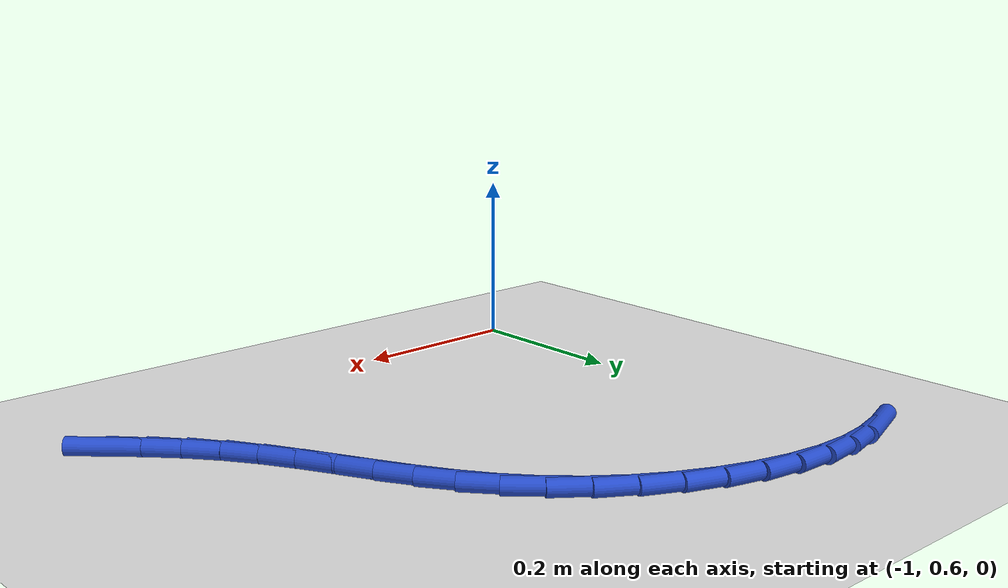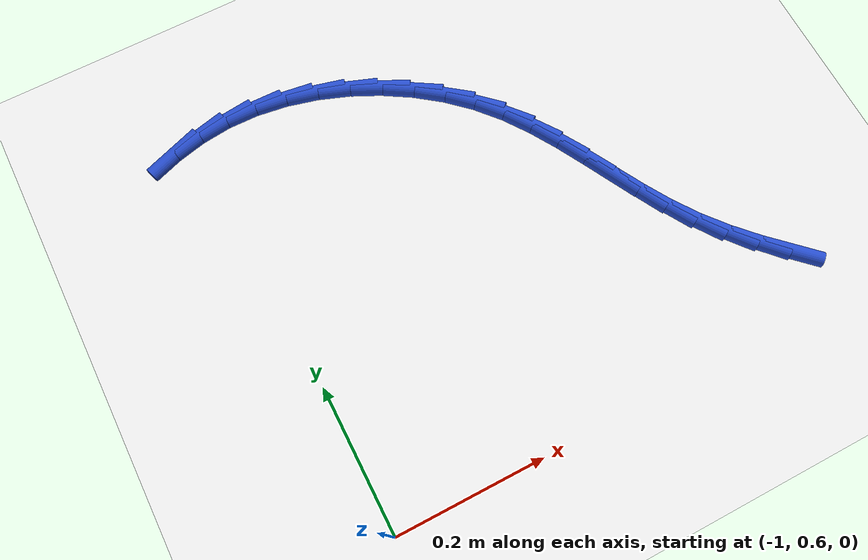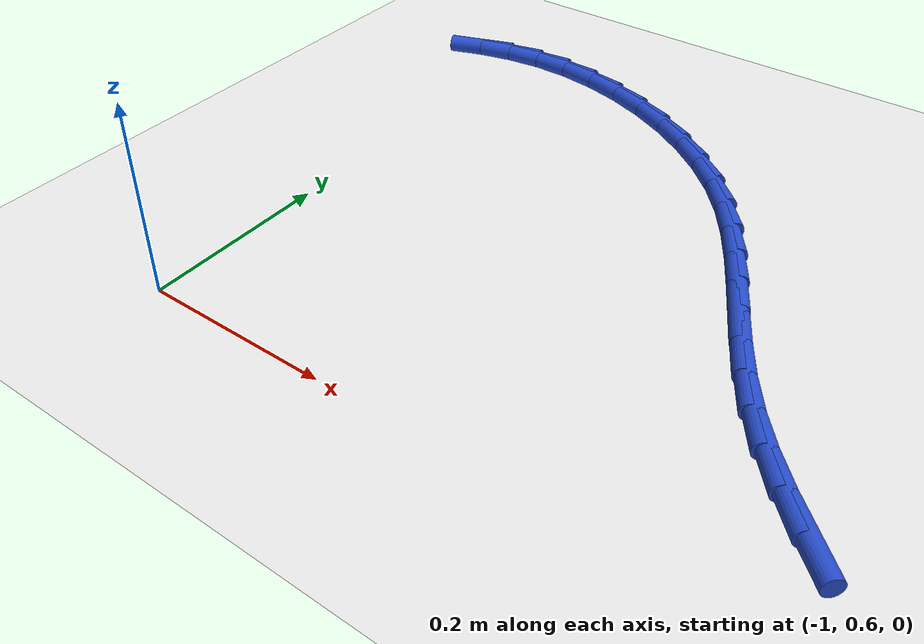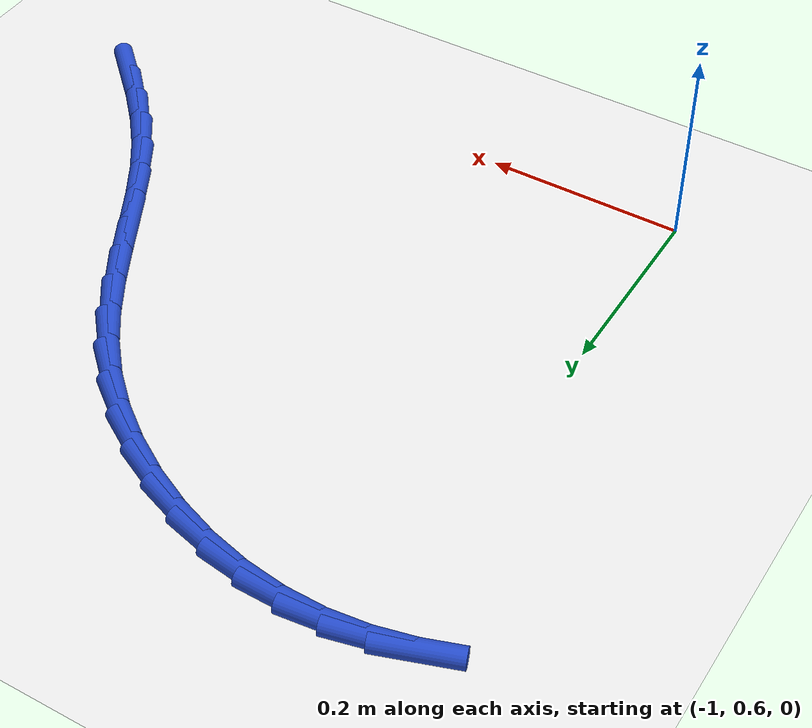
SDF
<sdf version="1.6">
 <world name="default">
  <model name="ground_plane">
   <static>1</static>
   <link name="link">
    <collision name="collision">
     <geometry><plane><normal>0 0 1</normal><size>100 100</size></plane></geometry>
     <surface><friction><ode><mu>100</mu><mu2>50</mu2></ode></friction></surface>
    </collision>
    <visual name="visual">
     <cast_shadows>0</cast_shadows>
     <geometry><plane><normal>0 0 1</normal><size>100 100</size></plane></geometry>
     <material>
      <script><uri>file://media/materials/scripts/gazebo.material</uri><name>Gazebo/WhiteGlow</name></script>
     </material>
    </visual>
   </link>
  </model>
  <model name="line">
   <link name="link_20">
    <pose>-0.3984186187653921 0.6799824502291371 0.01 0 1.57 -0.769511523250999</pose>
    <collision name="collision">
     <geometry><cylinder><radius>0.01</radius><length>0.08</length></cylinder></geometry>
    </collision>
    <visual name="visual">
     <material>
      <script><name>Gazebo/Blue</name><uri>file://media/materials/scripts/gazebo.material</uri></script>
     </material>
     <geometry><cylinder><radius>0.01</radius><length>0.08</length></cylinder></geometry>
    </visual>
   </link>
   <link name="link_21">
    <pose>-0.4284886812861927 0.7091119514545836 0.01 0 1.57 -0.8238747855138431</pose>
    <collision name="collision">
     <geometry><cylinder><radius>0.01</radius><length>0.08</length></cylinder></geometry>
    </collision>
    <visual name="visual">
     <material>
      <script><name>Gazebo/Blue</name><uri>file://media/materials/scripts/gazebo.material</uri></script>
     </material>
     <geometry><cylinder><radius>0.01</radius><length>0.08</length></cylinder></geometry>
    </visual>
   </link>
   <link name="link_22">
    <pose>-0.4566797437201335 0.7395603774057905 0.01 0 1.57 -0.8917098272765633</pose>
    <collision name="collision">
     <geometry><cylinder><radius>0.01</radius><length>0.08</length></cylinder></geometry>
    </collision>
    <visual name="visual">
     <material>
      <script><name>Gazebo/Blue</name><uri>file://media/materials/scripts/gazebo.material</uri></script>
     </material>
     <geometry><cylinder><radius>0.01</radius><length>0.08</length></cylinder></geometry>
    </visual>
   </link>
   <link name="link_23">
    <pose>-0.4825509511031091 0.7716128526822251 0.01 0 1.57 -0.9713835721225375</pose>
    <collision name="collision">
     <geometry><cylinder><radius>0.01</radius><length>0.08</length></cylinder></geometry>
    </collision>
    <visual name="visual">
     <material>
      <script><name>Gazebo/Blue</name><uri>file://media/materials/scripts/gazebo.material</uri></script>
     </material>
     <geometry><cylinder><radius>0.01</radius><length>0.08</length></cylinder></geometry>
    </visual>
   </link>
   <link name="link_24">
    <pose>-0.5057175224394685 0.8055180439164932 0.01 0 1.57 -1.0397373057597057</pose>
    <collision name="collision">
     <geometry><cylinder><radius>0.01</radius><length>0.08</length></cylinder></geometry>
    </collision>
    <visual name="visual">
     <material>
      <script><name>Gazebo/Blue</name><uri>file://media/materials/scripts/gazebo.material</uri></script>
     </material>
     <geometry><cylinder><radius>0.01</radius><length>0.08</length></cylinder></geometry>
    </visual>
   </link>
   <link name="link_25">
    <pose>-0.5265696846647365 0.8410207259309762 0.01 0 1.57 -1.0800094032478889</pose>
    <collision name="collision">
     <geometry><cylinder><radius>0.01</radius><length>0.08</length></cylinder></geometry>
    </collision>
    <visual name="visual">
     <material>
      <script><name>Gazebo/Blue</name><uri>file://media/materials/scripts/gazebo.material</uri></script>
     </material>
     <geometry><cylinder><radius>0.01</radius><length>0.08</length></cylinder></geometry>
    </visual>
   </link>
   <link name="link_26">
    <pose>-0.5460631289883203 0.8774980220633136 0.01 0 1.57 -1.0922069597904753</pose>
    <collision name="collision">
     <geometry><cylinder><radius>0.01</radius><length>0.08</length></cylinder></geometry>
    </collision>
    <visual name="visual">
     <material>
      <script><name>Gazebo/Blue</name><uri>file://media/materials/scripts/gazebo.material</uri></script>
     </material>
     <geometry><cylinder><radius>0.01</radius><length>0.08</length></cylinder></geometry>
    </visual>
   </link>
   <link name="link_27">
    <pose>-0.565166402060116 0.9143186973480628 0.01 0 1.57 -1.0766400171323605</pose>
    <collision name="collision">
     <geometry><cylinder><radius>0.01</radius><length>0.08</length></cylinder></geometry>
    </collision>
    <visual name="visual">
     <material>
      <script><name>Gazebo/Blue</name><uri>file://media/materials/scripts/gazebo.material</uri></script>
     </material>
     <geometry><cylinder><radius>0.01</radius><length>0.08</length></cylinder></geometry>
    </visual>
   </link>
   <link name="link_28">
    <pose>-0.5848480505300198 0.950851516819782 0.01 0 1.57 -1.0332654261850762</pose>
    <collision name="collision">
     <geometry><cylinder><radius>0.01</radius><length>0.08</length></cylinder></geometry>
    </collision>
    <visual name="visual">
     <material>
      <script><name>Gazebo/Blue</name><uri>file://media/materials/scripts/gazebo.material</uri></script>
     </material>
     <geometry><cylinder><radius>0.01</radius><length>0.08</length></cylinder></geometry>
    </visual>
   </link>
   <link name="link_29">
    <pose>-0.6060766210479278 0.9864652455130287 0.01 0 1.57 -0.9620501244901579</pose>
    <collision name="collision">
     <geometry><cylinder><radius>0.01</radius><length>0.08</length></cylinder></geometry>
    </collision>
    <visual name="visual">
     <material>
      <script><name>Gazebo/Blue</name><uri>file://media/materials/scripts/gazebo.material</uri></script>
     </material>
     <geometry><cylinder><radius>0.01</radius><length>0.08</length></cylinder></geometry>
    </visual>
   </link>
   <link name="link_30">
    <pose>-0.6298206602637358 1.02052864846236 0.01 0 1.57 -0.8641561636152018</pose>
    <collision name="collision">
     <geometry><cylinder><radius>0.01</radius><length>0.08</length></cylinder></geometry>
    </collision>
    <visual name="visual">
     <material>
      <script><name>Gazebo/Blue</name><uri>file://media/materials/scripts/gazebo.material</uri></script>
     </material>
     <geometry><cylinder><radius>0.01</radius><length>0.08</length></cylinder></geometry>
    </visual>
   </link>
   <link name="link_31">
    <pose>-0.6570397124970522 1.0524121476929484 0.01 0 1.57 -0.7540346225117152</pose>
    <collision name="collision">
     <geometry><cylinder><radius>0.01</radius><length>0.08</length></cylinder></geometry>
    </collision>
    <visual name="visual">
     <material>
      <script><name>Gazebo/Blue</name><uri>file://media/materials/scripts/gazebo.material</uri></script>
     </material>
     <geometry><cylinder><radius>0.01</radius><length>0.08</length></cylinder></geometry>
    </visual>
   </link>
   <link name="link_32">
    <pose>-0.6881112286628995 1.0815933067452037 0.01 0 1.57 -0.6499195010057198</pose>
    <collision name="collision">
     <geometry><cylinder><radius>0.01</radius><length>0.08</length></cylinder></geometry>
    </collision>
    <visual name="visual">
     <material>
      <script><name>Gazebo/Blue</name><uri>file://media/materials/scripts/gazebo.material</uri></script>
     </material>
     <geometry><cylinder><radius>0.01</radius><length>0.08</length></cylinder></geometry>
    </visual>
   </link>
   <link name="link_33">
    <pose>-0.7224854272697202 1.1077203577914716 0.01 0 1.57 -0.5504771488180071</pose>
    <collision name="collision">
     <geometry><cylinder><radius>0.01</radius><length>0.08</length></cylinder></geometry>
    </collision>
    <visual name="visual">
     <material>
      <script><name>Gazebo/Blue</name><uri>file://media/materials/scripts/gazebo.material</uri></script>
     </material>
     <geometry><cylinder><radius>0.01</radius><length>0.08</length></cylinder></geometry>
    </visual>
   </link>
   <link name="link_34">
    <pose>-0.759529771194415 1.1304567652051294 0.01 0 1.57 -0.4527037058236821</pose>
    <collision name="collision">
     <geometry><cylinder><radius>0.01</radius><length>0.08</length></cylinder></geometry>
    </collision>
    <visual name="visual">
     <material>
      <script><name>Gazebo/Blue</name><uri>file://media/materials/scripts/gazebo.material</uri></script>
     </material>
     <geometry><cylinder><radius>0.01</radius><length>0.08</length></cylinder></geometry>
    </visual>
   </link>
   <link name="link_35">
    <pose>-0.7986117233138849 1.1494659933595548 0.01 0 1.57 -0.3536261670584787</pose>
    <collision name="collision">
     <geometry><cylinder><radius>0.01</radius><length>0.08</length></cylinder></geometry>
    </collision>
    <visual name="visual">
     <material>
      <script><name>Gazebo/Blue</name><uri>file://media/materials/scripts/gazebo.material</uri></script>
     </material>
     <geometry><cylinder><radius>0.01</radius><length>0.08</length></cylinder></geometry>
    </visual>
   </link>
   <link name="link_36">
    <pose>-0.8390987465050314 1.1644115066281253 0.01 0 1.57 -0.25022679561089617</pose>
    <collision name="collision">
     <geometry><cylinder><radius>0.01</radius><length>0.08</length></cylinder></geometry>
    </collision>
    <visual name="visual">
     <material>
      <script><name>Gazebo/Blue</name><uri>file://media/materials/scripts/gazebo.material</uri></script>
     </material>
     <geometry><cylinder><radius>0.01</radius><length>0.08</length></cylinder></geometry>
    </visual>
   </link>
   <link name="link_37">
    <pose>-0.8803583036447554 1.1749567693842184 0.01 0 1.57 -0.1393929859594131</pose>
    <collision name="collision">
     <geometry><cylinder><radius>0.01</radius><length>0.08</length></cylinder></geometry>
    </collision>
    <visual name="visual">
     <material>
      <script><name>Gazebo/Blue</name><uri>file://media/materials/scripts/gazebo.material</uri></script>
     </material>
     <geometry><cylinder><radius>0.01</radius><length>0.08</length></cylinder></geometry>
    </visual>
   </link>
   <link name="link_38">
    <pose>-0.9217578576099578 1.1807652460012115 0.01 0 1.57 -0.017969430090186148</pose>
    <collision name="collision">
     <geometry><cylinder><radius>0.01</radius><length>0.08</length></cylinder></geometry>
    </collision>
    <visual name="visual">
     <material>
      <script><name>Gazebo/Blue</name><uri>file://media/materials/scripts/gazebo.material</uri></script>
     </material>
     <geometry><cylinder><radius>0.01</radius><length>0.08</length></cylinder></geometry>
    </visual>
   </link>
   <link name="link_39">
    <pose>-0.9626648712775403 1.1815004008524823 0.01 0 1.57 0.11282541030389691</pose>
    <collision name="collision">
     <geometry><cylinder><radius>0.01</radius><length>0.08</length></cylinder></geometry>
    </collision>
    <visual name="visual">
     <material>
      <script><name>Gazebo/Blue</name><uri>file://media/materials/scripts/gazebo.material</uri></script>
     </material>
     <geometry><cylinder><radius>0.01</radius><length>0.08</length></cylinder></geometry>
    </visual>
   </link>
   <link name="link_40">
    <pose>-1.00256579323061 1.176979363034606 0.01 0 1.57 0.2345974822309822</pose>
    <collision name="collision">
     <geometry><cylinder><radius>0.01</radius><length>0.08</length></cylinder></geometry>
    </collision>
    <visual name="visual">
     <material>
      <script><name>Gazebo/Blue</name><uri>file://media/materials/scripts/gazebo.material</uri></script>
     </material>
     <geometry><cylinder><radius>0.01</radius><length>0.08</length></cylinder></geometry>
    </visual>
   </link>
   <link name="link_41">
    <pose>-1.0414613292002413 1.1676834017733715 0.01 0 1.57 0.33901113135099137</pose>
    <collision name="collision">
     <geometry><cylinder><radius>0.01</radius><length>0.08</length></cylinder></geometry>
    </collision>
    <visual name="visual">
     <material>
      <script><name>Gazebo/Blue</name><uri>file://media/materials/scripts/gazebo.material</uri></script>
     </material>
     <geometry><cylinder><radius>0.01</radius><length>0.08</length></cylinder></geometry>
    </visual>
   </link>
  </model>
 </world>
</sdf>
